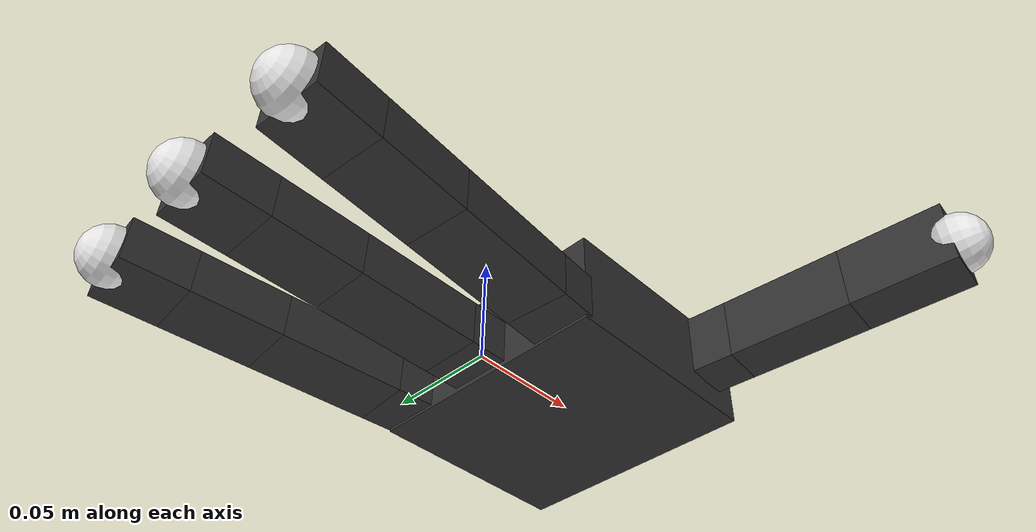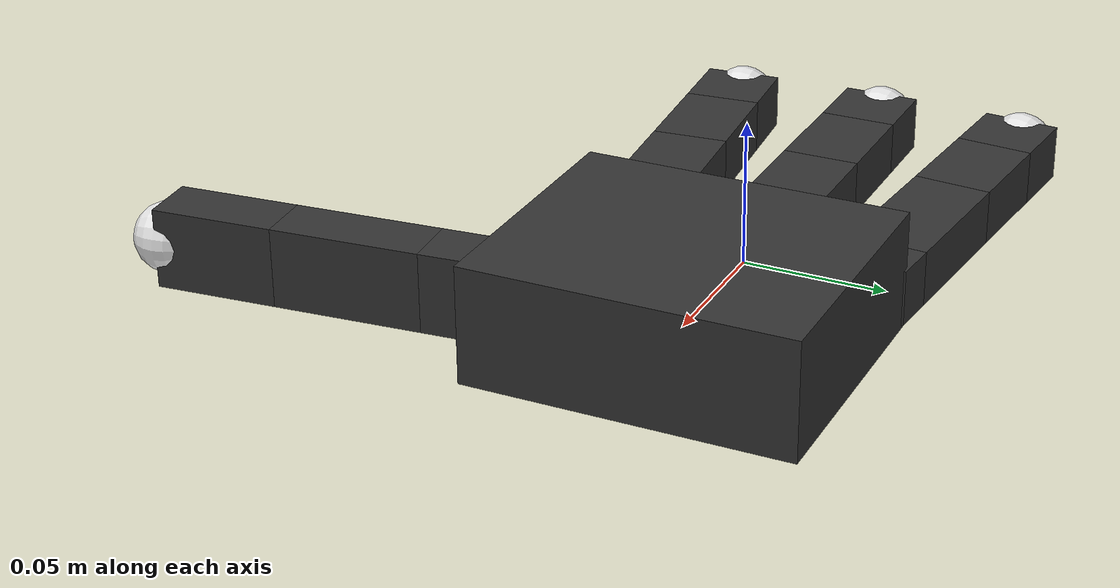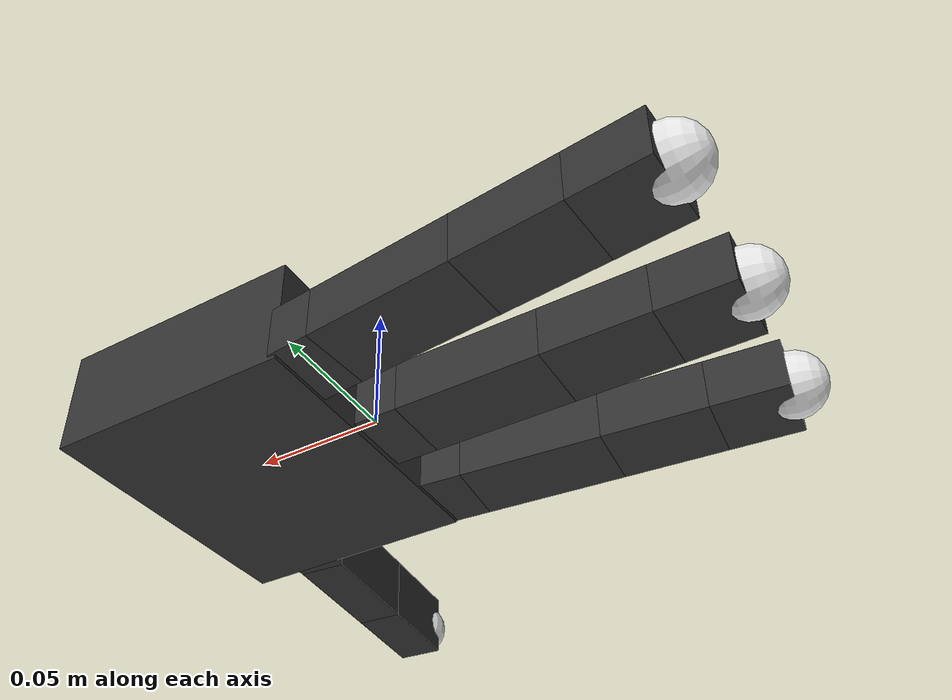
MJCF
<mujoco model="allegro_hand_right">
    <compiler angle="radian" meshdir="meshes/" />
    <option integrator='RK4' timestep='0.002' />
    <size njmax="500" nconmax="100" />
    <default >
        <joint limited="true" margin="0.01" armature="0.001" damping="0.05" frictionloss="0.001" />
    </default>
    <worldbody>

        <light directional='false' diffuse='.7 .7 .7' specular='0.03 0.03 0.03' pos='-1 -1 4' dir='1 1 -4' />
        <geom name='ground' size="1.5 1.5 0.25" pos="0 0 -1" type="plane" contype="1" conaffinity="0"/>
        <camera name="fixed" pos="0 -0.7 0.7" quat="0.92388 0.382683 0 0" />

        <body name="base_link" pos="0 0 0" euler='0 -1.57 3.14'>
            <inertial pos="-0.0093 0 -0.0475" mass="0.437988" diaginertia="0.000795459 0.000390161 0.000526813" />
            <geom size="0.0204 0.0565 0.0475" pos="-0.0093 0 -0.0475" type="box" rgba="0.2 0.2 0.2 1" conaffinity='0' contype='0'/>
            <body name="index-0" pos="0 0.0435 -0.001542" quat="0.999048 -0.0436194 0 0">
                <inertial pos="0 0 0.0082" mass="0.0088396" diaginertia="7.55204e-07 4.8111e-07 8.40064e-07" />
                <joint name="index-joint-0" pos="0 0 0" axis="0 0 1" limited="true" range="-0.47 0.47" />
                <geom size="0.0098 0.01375 0.0082" pos="0 0 0.0082" type="box" rgba="0.2 0.2 0.2 1" />
                <body name="index-1" pos="0 0 0.0164">
                    <inertial pos="0 0 0.027" mass="0.029106" diaginertia="8.90704e-06 8.00454e-06 2.76606e-06" />
                    <joint name="index-joint-1" pos="0 0 0" axis="0 1 0" limited="true" range="-0.196 1.61" />
                    <geom size="0.0098 0.01375 0.027" pos="0 0 0.027" type="box" rgba="0.2 0.2 0.2 1" />
                    <body name="index-2" pos="0 0 0.054">
                        <inertial pos="0 0 0.0192" mass="0.0206976" diaginertia="3.8477e-06 3.20592e-06 1.96698e-06" />
                        <joint name="index-joint-2" pos="0 0 0" axis="0 1 0" limited="true" range="-0.174 1.709" />
                        <geom size="0.0098 0.01375 0.0192" pos="0 0 0.0192" type="box" rgba="0.2 0.2 0.2 1" />
                        <body name="index-3" pos="0 0 0.0384">
                            <inertial pos="0 0 0.01335" mass="0.0143913" diaginertia="1.7619e-06 1.31566e-06 1.36767e-06" />
                            <joint name="index-joint-3" pos="0 0 0" axis="0 1 0" limited="true" range="-0.227 1.618" />
                            <geom size="0.0098 0.01375 0.01335" pos="0 0 0.01335" type="box" rgba="0.2 0.2 0.2 1" />
                            <body name="index-tip" pos="0 0 0.0267">
                                <inertial pos="0 0 0" mass="0.00723823" diaginertia="4.16922e-07 4.16922e-07 4.16922e-07" />
                                <geom size="0.012" rgba="0.9 0.9 0.9 1" />
                            </body>
                        </body>
                    </body>
                </body>
            </body>

            <body name="middle-0" pos="0 0 0.0007">
                <inertial pos="0 0 0.0082" mass="0.0088396" diaginertia="7.55204e-07 4.8111e-07 8.40064e-07" />
                <joint name="middle-joint-0" pos="0 0 0" axis="0 0 1" limited="true" range="-0.47 0.47" />
                <geom size="0.0098 0.01375 0.0082" pos="0 0 0.0082" type="box" rgba="0.2 0.2 0.2 1" />
                <body name="middle-1" pos="0 0 0.0164">
                    <inertial pos="0 0 0.027" mass="0.029106" diaginertia="8.90704e-06 8.00454e-06 2.76606e-06" />
                    <joint name="middle-joint-1" pos="0 0 0" axis="0 1 0" limited="true" range="-0.196 1.61" />
                    <geom size="0.0098 0.01375 0.027" pos="0 0 0.027" type="box" rgba="0.2 0.2 0.2 1" />
                    <body name="middle-2" pos="0 0 0.054">
                        <inertial pos="0 0 0.0192" mass="0.0206976" diaginertia="3.8477e-06 3.20592e-06 1.96698e-06" />
                        <joint name="middle-joint-2" pos="0 0 0" axis="0 1 0" limited="true" range="-0.174 1.709" />
                        <geom size="0.0098 0.01375 0.0192" pos="0 0 0.0192" type="box" rgba="0.2 0.2 0.2 1" />
                        <body name="middle-3" pos="0 0 0.0384">
                            <inertial pos="0 0 0.01335" mass="0.0143913" diaginertia="1.7619e-06 1.31566e-06 1.36767e-06" />
                            <joint name="middle-joint-3" pos="0 0 0" axis="0 1 0" limited="true" range="-0.227 1.618" />
                            <geom size="0.0098 0.01375 0.01335" pos="0 0 0.01335" type="box" rgba="0.2 0.2 0.2 1" />
                            <body name="middle-tip" pos="0 0 0.0267">
                                <inertial pos="0 0 0" mass="0.00723823" diaginertia="4.16922e-07 4.16922e-07 4.16922e-07" />
                                <geom size="0.012" rgba="0.9 0.9 0.9 1" />
                            </body>
                        </body>
                    </body>
                </body>
            </body>

            <body name="pinky-0" pos="0 -0.0435 -0.001542" quat="0.999048 0.0436194 0 0">
                <inertial pos="0 0 0.0082" mass="0.0088396" diaginertia="7.55204e-07 4.8111e-07 8.40064e-07" />
                <joint name="pinky-joint-0" pos="0 0 0" axis="0 0 1" limited="true" range="-0.47 0.47" />
                <geom size="0.0098 0.01375 0.0082" pos="0 0 0.0082" type="box" rgba="0.2 0.2 0.2 1" />
                <body name="pinky-1" pos="0 0 0.0164">
                    <inertial pos="0 0 0.027" mass="0.029106" diaginertia="8.90704e-06 8.00454e-06 2.76606e-06" />
                    <joint name="pinky-joint-1" pos="0 0 0" axis="0 1 0" limited="true" range="-0.196 1.61" />
                    <geom size="0.0098 0.01375 0.027" pos="0 0 0.027" type="box" rgba="0.2 0.2 0.2 1" />
                    <body name="pinky-2" pos="0 0 0.054">
                        <inertial pos="0 0 0.0192" mass="0.0206976" diaginertia="3.8477e-06 3.20592e-06 1.96698e-06" />
                        <joint name="pinky-joint-2" pos="0 0 0" axis="0 1 0" limited="true" range="-0.174 1.709" />
                        <geom size="0.0098 0.01375 0.0192" pos="0 0 0.0192" type="box" rgba="0.2 0.2 0.2 1" />
                        <body name="pinky-3" pos="0 0 0.0384">
                            <inertial pos="0 0 0.01335" mass="0.0143913" diaginertia="1.7619e-06 1.31566e-06 1.36767e-06" />
                            <joint name="pinky-joint-3" pos="0 0 0" axis="0 1 0" limited="true" range="-0.227 1.618" />
                            <geom size="0.0098 0.01375 0.01335" pos="0 0 0.01335" type="box" rgba="0.2 0.2 0.2 1" />
                            <body name="pinky-tip" pos="0 0 0.0267">
                                <inertial pos="0 0 0" mass="0.00723823" diaginertia="4.16922e-07 4.16922e-07 4.16922e-07" />
                                <geom size="0.012" rgba="0.9 0.9 0.9 1" />
                            </body>
                        </body>
                    </body>
                </body>
            </body>
            <body name="thumb-0" pos="-0.0182 0.019333 -0.045987" quat="0.477714 -0.521334 -0.521334 -0.477714">
                <inertial pos="-0.0179 0.009 0.0145" mass="0.0553826" diaginertia="1.48898e-05 1.54697e-05 1.12502e-05" />
                <joint name="thumb-joint-0" pos="0 0 0" axis="-1 0 0" limited="true" range="0.263 1.396" />
                <geom size="0.0179 0.017 0.02275" pos="-0.0179 0.009 0.0145" type="box" rgba="0.2 0.2 0.2 1" />
                <body name="thumb-1" pos="-0.027 0.005 0.0399">
                    <inertial pos="0 0 0.00885" mass="0.0095403" diaginertia="8.50311e-07 5.5449e-07 9.06654e-07" />
                    <joint name="thumb-joint-1" pos="0 0 0" axis="0 0 1" limited="true" range="-0.105 1.163" />
                    <geom size="0.0098 0.01375 0.00885" pos="0 0 0.00885" type="box" rgba="0.2 0.2 0.2 1" />
                    <body name="thumb-2" pos="0 0 0.0177">
                        <inertial pos="0 0 0.0257" mass="0.0277046" diaginertia="7.8455e-06 6.98645e-06 2.63288e-06" />
                        <joint name="thumb-joint-2" pos="0 0 0" axis="0 1 0" limited="true" range="-0.189 1.644" />
                        <geom size="0.0098 0.01375 0.0257" pos="0 0 0.0257" type="box" rgba="0.2 0.2 0.2 1" />
                        <body name="thumb-3" pos="0 0 0.0514">
                            <inertial pos="0 0 0.02115" mass="0.0227997" diaginertia="4.83646e-06 4.1295e-06 2.16675e-06" />
                            <joint name="thumb-joint-3" pos="0 0 0" axis="0 1 0" limited="true" range="-0.162 1.719" />
                            <geom size="0.0098 0.01375 0.02115" pos="0 0 0.02115" type="box" rgba="0.2 0.2 0.2 1" />
                            <body name="thumb-tip" pos="0 0 0.0423">
                                <inertial pos="0 0 0" mass="0.00723823" diaginertia="4.16922e-07 4.16922e-07 4.16922e-07" />
                                <geom size="0.012" rgba="0.9 0.9 0.9 1" />
                            </body>
                        </body>
                    </body>
                </body>
            </body>
        </body>
    </worldbody>

    <actuator>
        <general name='index0' joint='index-joint-0' ctrlrange='-1 1'/>
        <general name='index1' joint='index-joint-1' ctrlrange='-1 1'/>
        <general name='index2' joint='index-joint-2' ctrlrange='-1 1'/>
        <general name='index3' joint='index-joint-3' ctrlrange='-1 1'/>

        <general name='middle0' joint='middle-joint-0' ctrlrange='-1 1'/>
        <general name='middle1' joint='middle-joint-1' ctrlrange='-1 1'/>
        <general name='middle2' joint='middle-joint-2' ctrlrange='-1 1'/>
        <general name='middle3' joint='middle-joint-3' ctrlrange='-1 1'/>

        <general name='pinky0' joint='pinky-joint-0' ctrlrange='-1 1'/>
        <general name='pinky1' joint='pinky-joint-1' ctrlrange='-1 1'/>
        <general name='pinky2' joint='pinky-joint-2' ctrlrange='-1 1'/>
        <general name='pinky3' joint='pinky-joint-3' ctrlrange='-1 1'/>

        <general name='thumb0' joint='thumb-joint-0' ctrlrange='-1 1'/>
        <general name='thumb1' joint='thumb-joint-1' ctrlrange='-1 1'/>
        <general name='thumb2' joint='thumb-joint-2' ctrlrange='-1 1'/>
        <general name='thumb3' joint='thumb-joint-3' ctrlrange='-1 1'/>

    </actuator>

</mujoco>
